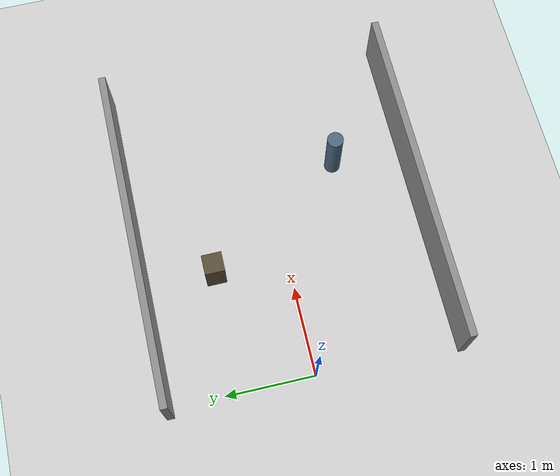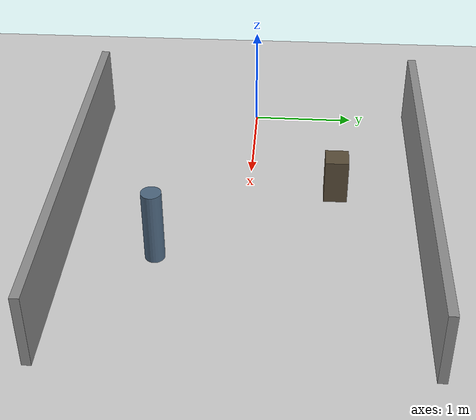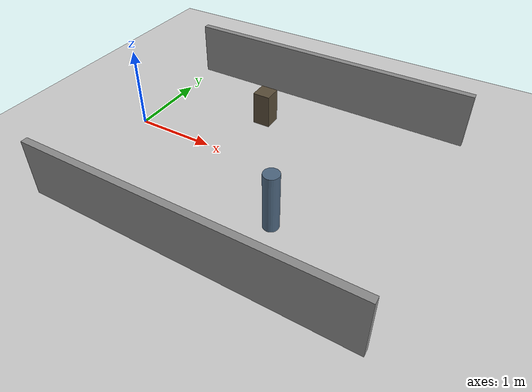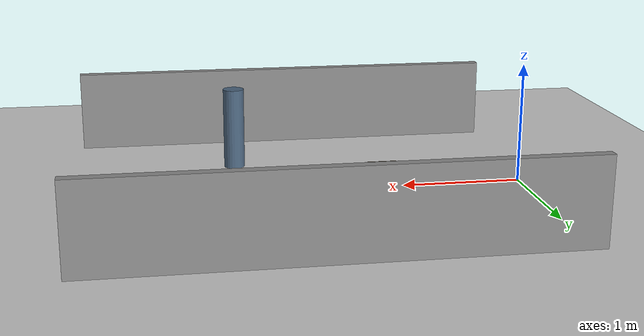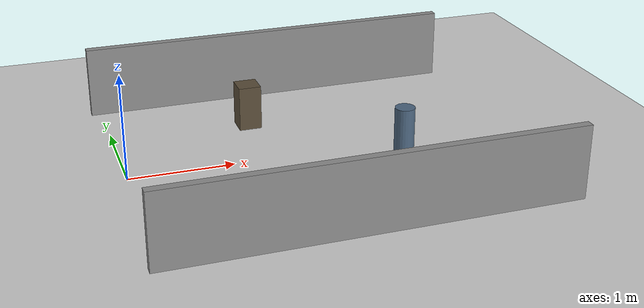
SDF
<?xml version="1.0"?>
<sdf version="1.9">
  <world name="follow_me_obstacles">
    <plugin filename="libignition-gazebo-physics-system.so"
            name="ignition::gazebo::systems::Physics"/>
    <plugin filename="libignition-gazebo-user-commands-system.so"
            name="ignition::gazebo::systems::UserCommands"/>
    <plugin filename="libignition-gazebo-scene-broadcaster-system.so"
            name="ignition::gazebo::systems::SceneBroadcaster"/>
    <plugin filename="libignition-gazebo-sensors-system.so"
            name="ignition::gazebo::systems::Sensors">
      <!-- FortressではLiDAR出力をGazebo Transportへ出し、ROS側へはros_gz_bridgeで接続する。 -->
      <render_engine>ogre2</render_engine>
    </plugin>

    <physics name="default_physics" type="ode">
      <max_step_size>0.001</max_step_size>
      <real_time_update_rate>1000</real_time_update_rate>
      <real_time_factor>1.0</real_time_factor>
    </physics>

    <scene>
      <ambient>0.45 0.45 0.45 1</ambient>
      <background>0.7 0.7 0.7 1</background>
      <shadows>true</shadows>
    </scene>

    <light type="directional" name="sun">
      <cast_shadows>true</cast_shadows>
      <pose>0 0 10 0 0 0</pose>
      <diffuse>0.8 0.8 0.8 1</diffuse>
      <specular>0.2 0.2 0.2 1</specular>
      <attenuation>
        <range>1000</range>
        <constant>0.9</constant>
        <linear>0.01</linear>
        <quadratic>0.001</quadratic>
      </attenuation>
      <direction>-0.5 0.1 -0.9</direction>
    </light>

    <model name="ground_plane">
      <static>true</static>
      <link name="link">
        <collision name="collision">
          <geometry>
            <plane>
              <normal>0 0 1</normal>
              <size>100 100</size>
            </plane>
          </geometry>
        </collision>
        <visual name="visual">
          <geometry>
            <plane>
              <normal>0 0 1</normal>
              <size>100 100</size>
            </plane>
          </geometry>
          <material>
            <ambient>0.8 0.8 0.8 1</ambient>
            <diffuse>0.8 0.8 0.8 1</diffuse>
          </material>
        </visual>
      </link>
    </model>

    <model name="left_wall">
      <static>true</static>
      <pose>1.8 1.60 0.35 0 0 0</pose>
      <link name="link">
        <collision name="collision">
          <geometry>
            <box>
              <size>3.8 0.08 0.70</size>
            </box>
          </geometry>
        </collision>
        <visual name="visual">
          <!-- 0x20000000をLiDAR専用bitにし、Actor meshを除外しても障害物は/scanに残す。 -->
          <visibility_flags>536870913</visibility_flags>
          <geometry>
            <box>
              <size>3.8 0.08 0.70</size>
            </box>
          </geometry>
          <material>
            <ambient>0.55 0.55 0.55 1</ambient>
            <diffuse>0.55 0.55 0.55 1</diffuse>
          </material>
        </visual>
      </link>
    </model>

    <model name="right_wall">
      <static>true</static>
      <pose>1.8 -1.60 0.35 0 0 0</pose>
      <link name="link">
        <collision name="collision">
          <geometry>
            <box>
              <size>3.8 0.08 0.70</size>
            </box>
          </geometry>
        </collision>
        <visual name="visual">
          <visibility_flags>536870913</visibility_flags>
          <geometry>
            <box>
              <size>3.8 0.08 0.70</size>
            </box>
          </geometry>
          <material>
            <ambient>0.55 0.55 0.55 1</ambient>
            <diffuse>0.55 0.55 0.55 1</diffuse>
          </material>
        </visual>
      </link>
    </model>

    <model name="box_obstacle_front_left">
      <static>true</static>
      <pose>1.35 0.82 0.22 0 0 0</pose>
      <link name="link">
        <collision name="collision">
          <geometry>
            <box>
              <size>0.22 0.22 0.44</size>
            </box>
          </geometry>
        </collision>
        <visual name="visual">
          <visibility_flags>536870913</visibility_flags>
          <geometry>
            <box>
              <size>0.22 0.22 0.44</size>
            </box>
          </geometry>
          <material>
            <ambient>0.35 0.30 0.22 1</ambient>
            <diffuse>0.35 0.30 0.22 1</diffuse>
          </material>
        </visual>
      </link>
    </model>

    <model name="pillar_obstacle">
      <static>true</static>
      <pose>2.35 -0.78 0.35 0 0 0</pose>
      <link name="link">
        <collision name="collision">
          <geometry>
            <cylinder>
              <radius>0.09</radius>
              <length>0.70</length>
            </cylinder>
          </geometry>
        </collision>
        <visual name="visual">
          <visibility_flags>536870913</visibility_flags>
          <geometry>
            <cylinder>
              <radius>0.09</radius>
              <length>0.70</length>
            </cylinder>
          </geometry>
          <material>
            <ambient>0.30 0.40 0.50 1</ambient>
            <diffuse>0.30 0.40 0.50 1</diffuse>
          </material>
        </visual>
      </link>
    </model>
  </world>
</sdf>
